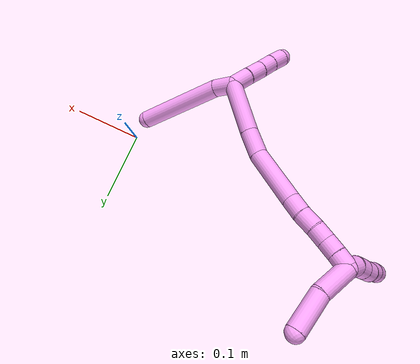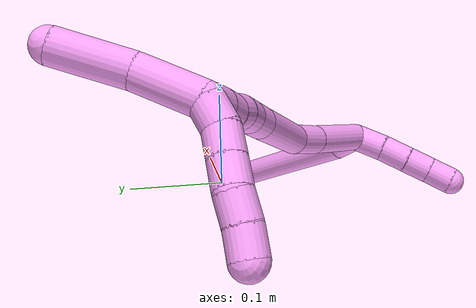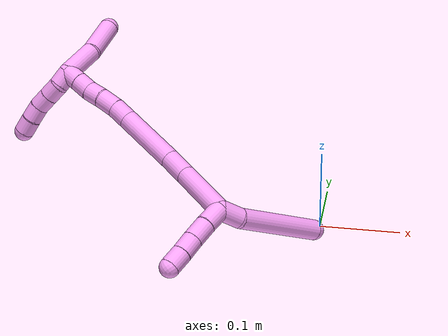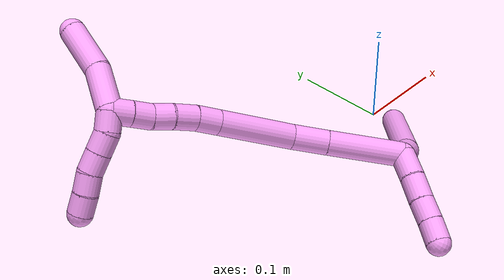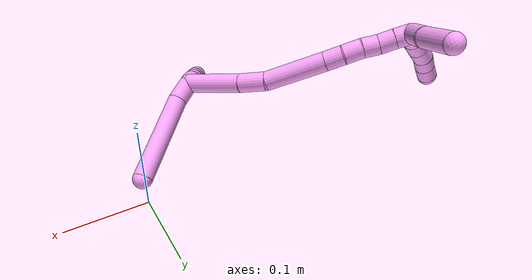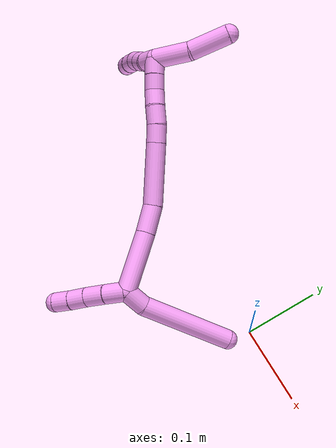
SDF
<sdf version="1.7">
 <world name="default">
  <model name="4">
   <static>0</static>
   <link name="4">
    <collision name="collision-cylinder-e_1_2_8">
     <pose>0.001744 0.011386 -0.008772 -2.22721 0.120759 -0.244541</pose>
     <geometry><cylinder><radius>0.0125</radius><length>0.028957</length></cylinder></geometry>
     <surface>
      <friction><ode><mu>1.16</mu><mu2>1.16</mu2><slip1>0</slip1><slip2>0</slip2></ode></friction>
      <contact><ode><kp>1e+06</kp><kd>1</kd><max_vel>0</max_vel><min_depth>0.001</min_depth></ode></contact>
     </surface>
    </collision>
    <visual name="visual-cylinder-e_1_2_8">
     <pose>0.001744 0.011386 -0.008772 -2.22721 0.120759 -0.244541</pose>
     <geometry><cylinder><radius>0.0125</radius><length>0.028957</length></cylinder></geometry>
     <material><ambient>1 0.65098 0.996078 1</ambient></material>
    </visual>
    <collision name="collision-cylinder-e_2_8_6">
     <pose>0.010856 0.079269 -0.037957 -1.91753 0.12204 -0.173638</pose>
     <geometry><cylinder><radius>0.0125</radius><length>0.121043</length></cylinder></geometry>
     <surface>
      <friction><ode><mu>1.16</mu><mu2>1.16</mu2><slip1>0</slip1><slip2>0</slip2></ode></friction>
      <contact><ode><kp>1e+06</kp><kd>1</kd><max_vel>0</max_vel><min_depth>0.001</min_depth></ode></contact>
     </surface>
    </collision>
    <visual name="visual-cylinder-e_2_8_6">
     <pose>0.010856 0.079269 -0.037957 -1.91753 0.12204 -0.173638</pose>
     <geometry><cylinder><radius>0.0125</radius><length>0.121043</length></cylinder></geometry>
     <material><ambient>1 0.65098 0.996078 1</ambient></material>
    </visual>
    <collision name="collision-cylinder-e_1_2_9">
     <pose>-0.007057 -0.011419 -0.004637 1.95653 -0.52007 -0.752722</pose>
     <geometry><cylinder><radius>0.0125</radius><length>0.028404</length></cylinder></geometry>
     <surface>
      <friction><ode><mu>1.16</mu><mu2>1.16</mu2><slip1>0</slip1><slip2>0</slip2></ode></friction>
      <contact><ode><kp>1e+06</kp><kd>1</kd><max_vel>0</max_vel><min_depth>0.001</min_depth></ode></contact>
     </surface>
    </collision>
    <visual name="visual-cylinder-e_1_2_9">
     <pose>-0.007057 -0.011419 -0.004637 1.95653 -0.52007 -0.752722</pose>
     <geometry><cylinder><radius>0.0125</radius><length>0.028404</length></cylinder></geometry>
     <material><ambient>1 0.65098 0.996078 1</ambient></material>
    </visual>
    <collision name="collision-cylinder-e_2_9_10">
     <pose>-0.021126 -0.032687 -0.013855 2.00616 -0.573139 -0.865681</pose>
     <geometry><cylinder><radius>0.0125</radius><length>0.025859</length></cylinder></geometry>
     <surface>
      <friction><ode><mu>1.16</mu><mu2>1.16</mu2><slip1>0</slip1><slip2>0</slip2></ode></friction>
      <contact><ode><kp>1e+06</kp><kd>1</kd><max_vel>0</max_vel><min_depth>0.001</min_depth></ode></contact>
     </surface>
    </collision>
    <visual name="visual-cylinder-e_2_9_10">
     <pose>-0.021126 -0.032687 -0.013855 2.00616 -0.573139 -0.865681</pose>
     <geometry><cylinder><radius>0.0125</radius><length>0.025859</length></cylinder></geometry>
     <material><ambient>1 0.65098 0.996078 1</ambient></material>
    </visual>
    <collision name="collision-cylinder-e_3_10_11">
     <pose>-0.034079 -0.051205 -0.022874 2.04394 -0.547875 -0.861512</pose>
     <geometry><cylinder><radius>0.0125</radius><length>0.022813</length></cylinder></geometry>
     <surface>
      <friction><ode><mu>1.16</mu><mu2>1.16</mu2><slip1>0</slip1><slip2>0</slip2></ode></friction>
      <contact><ode><kp>1e+06</kp><kd>1</kd><max_vel>0</max_vel><min_depth>0.001</min_depth></ode></contact>
     </surface>
    </collision>
    <visual name="visual-cylinder-e_3_10_11">
     <pose>-0.034079 -0.051205 -0.022874 2.04394 -0.547875 -0.861512</pose>
     <geometry><cylinder><radius>0.0125</radius><length>0.022813</length></cylinder></geometry>
     <material><ambient>1 0.65098 0.996078 1</ambient></material>
    </visual>
    <collision name="collision-cylinder-e_4_11_5">
     <pose>-0.04637 -0.068546 -0.031287 2.00062 -0.587141 -0.88058</pose>
     <geometry><cylinder><radius>0.0125</radius><length>0.022925</length></cylinder></geometry>
     <surface>
      <friction><ode><mu>1.16</mu><mu2>1.16</mu2><slip1>0</slip1><slip2>0</slip2></ode></friction>
      <contact><ode><kp>1e+06</kp><kd>1</kd><max_vel>0</max_vel><min_depth>0.001</min_depth></ode></contact>
     </surface>
    </collision>
    <visual name="visual-cylinder-e_4_11_5">
     <pose>-0.04637 -0.068546 -0.031287 2.00062 -0.587141 -0.88058</pose>
     <geometry><cylinder><radius>0.0125</radius><length>0.022925</length></cylinder></geometry>
     <material><ambient>1 0.65098 0.996078 1</ambient></material>
    </visual>
    <collision name="collision-cylinder-e_1_2_12">
     <pose>-0.013186 0.012039 0.033801 -0.34217 -0.352162 0.061462</pose>
     <geometry><cylinder><radius>0.0125</radius><length>0.076455</length></cylinder></geometry>
     <surface>
      <friction><ode><mu>1.16</mu><mu2>1.16</mu2><slip1>0</slip1><slip2>0</slip2></ode></friction>
      <contact><ode><kp>1e+06</kp><kd>1</kd><max_vel>0</max_vel><min_depth>0.001</min_depth></ode></contact>
     </surface>
    </collision>
    <visual name="visual-cylinder-e_1_2_12">
     <pose>-0.013186 0.012039 0.033801 -0.34217 -0.352162 0.061462</pose>
     <geometry><cylinder><radius>0.0125</radius><length>0.076455</length></cylinder></geometry>
     <material><ambient>1 0.65098 0.996078 1</ambient></material>
    </visual>
    <collision name="collision-cylinder-e_2_12_13">
     <pose>-0.032308 0.028672 0.084139 -0.270935 -0.333036 0.04581</pose>
     <geometry><cylinder><radius>0.0125</radius><length>0.036321</length></cylinder></geometry>
     <surface>
      <friction><ode><mu>1.16</mu><mu2>1.16</mu2><slip1>0</slip1><slip2>0</slip2></ode></friction>
      <contact><ode><kp>1e+06</kp><kd>1</kd><max_vel>0</max_vel><min_depth>0.001</min_depth></ode></contact>
     </surface>
    </collision>
    <visual name="visual-cylinder-e_2_12_13">
     <pose>-0.032308 0.028672 0.084139 -0.270935 -0.333036 0.04581</pose>
     <geometry><cylinder><radius>0.0125</radius><length>0.036321</length></cylinder></geometry>
     <material><ambient>1 0.65098 0.996078 1</ambient></material>
    </visual>
    <collision name="collision-cylinder-e_3_13_14">
     <pose>-0.048197 0.033895 0.139034 -0.016406 -0.253817 0.002093</pose>
     <geometry><cylinder><radius>0.0125</radius><length>0.079267</length></cylinder></geometry>
     <surface>
      <friction><ode><mu>1.16</mu><mu2>1.16</mu2><slip1>0</slip1><slip2>0</slip2></ode></friction>
      <contact><ode><kp>1e+06</kp><kd>1</kd><max_vel>0</max_vel><min_depth>0.001</min_depth></ode></contact>
     </surface>
    </collision>
    <visual name="visual-cylinder-e_3_13_14">
     <pose>-0.048197 0.033895 0.139034 -0.016406 -0.253817 0.002093</pose>
     <geometry><cylinder><radius>0.0125</radius><length>0.079267</length></cylinder></geometry>
     <material><ambient>1 0.65098 0.996078 1</ambient></material>
    </visual>
    <collision name="collision-cylinder-e_4_14_15">
     <pose>-0.06105 0.034521 0.188641 0.000296 -0.252342 -3.8e-05</pose>
     <geometry><cylinder><radius>0.0125</radius><length>0.023232</length></cylinder></geometry>
     <surface>
      <friction><ode><mu>1.16</mu><mu2>1.16</mu2><slip1>0</slip1><slip2>0</slip2></ode></friction>
      <contact><ode><kp>1e+06</kp><kd>1</kd><max_vel>0</max_vel><min_depth>0.001</min_depth></ode></contact>
     </surface>
    </collision>
    <visual name="visual-cylinder-e_4_14_15">
     <pose>-0.06105 0.034521 0.188641 0.000296 -0.252342 -3.8e-05</pose>
     <geometry><cylinder><radius>0.0125</radius><length>0.023232</length></cylinder></geometry>
     <material><ambient>1 0.65098 0.996078 1</ambient></material>
    </visual>
    <collision name="collision-cylinder-e_5_15_16">
     <pose>-0.068001 0.033278 0.211054 0.110532 -0.346164 -0.019344</pose>
     <geometry><cylinder><radius>0.0125</radius><length>0.023883</length></cylinder></geometry>
     <surface>
      <friction><ode><mu>1.16</mu><mu2>1.16</mu2><slip1>0</slip1><slip2>0</slip2></ode></friction>
      <contact><ode><kp>1e+06</kp><kd>1</kd><max_vel>0</max_vel><min_depth>0.001</min_depth></ode></contact>
     </surface>
    </collision>
    <visual name="visual-cylinder-e_5_15_16">
     <pose>-0.068001 0.033278 0.211054 0.110532 -0.346164 -0.019344</pose>
     <geometry><cylinder><radius>0.0125</radius><length>0.023883</length></cylinder></geometry>
     <material><ambient>1 0.65098 0.996078 1</ambient></material>
    </visual>
    <collision name="collision-cylinder-e_6_16_17">
     <pose>-0.076413 0.031791 0.231341 0.027193 -0.445697 -0.006163</pose>
     <geometry><cylinder><radius>0.0125</radius><length>0.020229</length></cylinder></geometry>
     <surface>
      <friction><ode><mu>1.16</mu><mu2>1.16</mu2><slip1>0</slip1><slip2>0</slip2></ode></friction>
      <contact><ode><kp>1e+06</kp><kd>1</kd><max_vel>0</max_vel><min_depth>0.001</min_depth></ode></contact>
     </surface>
    </collision>
    <visual name="visual-cylinder-e_6_16_17">
     <pose>-0.076413 0.031791 0.231341 0.027193 -0.445697 -0.006163</pose>
     <geometry><cylinder><radius>0.0125</radius><length>0.020229</length></cylinder></geometry>
     <material><ambient>1 0.65098 0.996078 1</ambient></material>
    </visual>
    <collision name="collision-cylinder-e_7_17_18">
     <pose>-0.083547 0.031182 0.250189 0.037053 -0.27764 -0.005178</pose>
     <geometry><cylinder><radius>0.0125</radius><length>0.020238</length></cylinder></geometry>
     <surface>
      <friction><ode><mu>1.16</mu><mu2>1.16</mu2><slip1>0</slip1><slip2>0</slip2></ode></friction>
      <contact><ode><kp>1e+06</kp><kd>1</kd><max_vel>0</max_vel><min_depth>0.001</min_depth></ode></contact>
     </surface>
    </collision>
    <visual name="visual-cylinder-e_7_17_18">
     <pose>-0.083547 0.031182 0.250189 0.037053 -0.27764 -0.005178</pose>
     <geometry><cylinder><radius>0.0125</radius><length>0.020238</length></cylinder></geometry>
     <material><ambient>1 0.65098 0.996078 1</ambient></material>
    </visual>
    <collision name="collision-cylinder-e_8_18_1">
     <pose>-0.089432 0.030833 0.269615 -0.001096 -0.31038 0.000171</pose>
     <geometry><cylinder><radius>0.0125</radius><length>0.020375</length></cylinder></geometry>
     <surface>
      <friction><ode><mu>1.16</mu><mu2>1.16</mu2><slip1>0</slip1><slip2>0</slip2></ode></friction>
      <contact><ode><kp>1e+06</kp><kd>1</kd><max_vel>0</max_vel><min_depth>0.001</min_depth></ode></contact>
     </surface>
    </collision>
    <visual name="visual-cylinder-e_8_18_1">
     <pose>-0.089432 0.030833 0.269615 -0.001096 -0.31038 0.000171</pose>
     <geometry><cylinder><radius>0.0125</radius><length>0.020375</length></cylinder></geometry>
     <material><ambient>1 0.65098 0.996078 1</ambient></material>
    </visual>
    <collision name="collision-cylinder-e_1_1_19">
     <pose>-0.101527 0.027581 0.276374 2.30456 -1.11599 -1.90329</pose>
     <geometry><cylinder><radius>0.0125</radius><length>0.02</length></cylinder></geometry>
     <surface>
      <friction><ode><mu>1.16</mu><mu2>1.16</mu2><slip1>0</slip1><slip2>0</slip2></ode></friction>
      <contact><ode><kp>1e+06</kp><kd>1</kd><max_vel>0</max_vel><min_depth>0.001</min_depth></ode></contact>
     </surface>
    </collision>
    <visual name="visual-cylinder-e_1_1_19">
     <pose>-0.101527 0.027581 0.276374 2.30456 -1.11599 -1.90329</pose>
     <geometry><cylinder><radius>0.0125</radius><length>0.02</length></cylinder></geometry>
     <material><ambient>1 0.65098 0.996078 1</ambient></material>
    </visual>
    <collision name="collision-cylinder-e_2_19_20">
     <pose>-0.120446 0.023418 0.272743 2.22438 -1.45718 -2.13092</pose>
     <geometry><cylinder><radius>0.0125</radius><length>0.02</length></cylinder></geometry>
     <surface>
      <friction><ode><mu>1.16</mu><mu2>1.16</mu2><slip1>0</slip1><slip2>0</slip2></ode></friction>
      <contact><ode><kp>1e+06</kp><kd>1</kd><max_vel>0</max_vel><min_depth>0.001</min_depth></ode></contact>
     </surface>
    </collision>
    <visual name="visual-cylinder-e_2_19_20">
     <pose>-0.120446 0.023418 0.272743 2.22438 -1.45718 -2.13092</pose>
     <geometry><cylinder><radius>0.0125</radius><length>0.02</length></cylinder></geometry>
     <material><ambient>1 0.65098 0.996078 1</ambient></material>
    </visual>
    <collision name="collision-cylinder-e_3_20_21">
     <pose>-0.14032 0.021676 0.27134 2.27398 -1.46022 -2.18647</pose>
     <geometry><cylinder><radius>0.0125</radius><length>0.02</length></cylinder></geometry>
     <surface>
      <friction><ode><mu>1.16</mu><mu2>1.16</mu2><slip1>0</slip1><slip2>0</slip2></ode></friction>
      <contact><ode><kp>1e+06</kp><kd>1</kd><max_vel>0</max_vel><min_depth>0.001</min_depth></ode></contact>
     </surface>
    </collision>
    <visual name="visual-cylinder-e_3_20_21">
     <pose>-0.14032 0.021676 0.27134 2.27398 -1.46022 -2.18647</pose>
     <geometry><cylinder><radius>0.0125</radius><length>0.02</length></cylinder></geometry>
     <material><ambient>1 0.65098 0.996078 1</ambient></material>
    </visual>
    <collision name="collision-cylinder-e_4_21_22">
     <pose>-0.159802 0.019775 0.267833 2.77885 -1.26739 -2.65244</pose>
     <geometry><cylinder><radius>0.0125</radius><length>0.02</length></cylinder></geometry>
     <surface>
      <friction><ode><mu>1.16</mu><mu2>1.16</mu2><slip1>0</slip1><slip2>0</slip2></ode></friction>
      <contact><ode><kp>1e+06</kp><kd>1</kd><max_vel>0</max_vel><min_depth>0.001</min_depth></ode></contact>
     </surface>
    </collision>
    <visual name="visual-cylinder-e_4_21_22">
     <pose>-0.159802 0.019775 0.267833 2.77885 -1.26739 -2.65244</pose>
     <geometry><cylinder><radius>0.0125</radius><length>0.02</length></cylinder></geometry>
     <material><ambient>1 0.65098 0.996078 1</ambient></material>
    </visual>
    <collision name="collision-cylinder-e_5_22_4">
     <pose>-0.17904 0.018689 0.262585 3.13138 -1.32282 -3.12847</pose>
     <geometry><cylinder><radius>0.0125</radius><length>0.02</length></cylinder></geometry>
     <surface>
      <friction><ode><mu>1.16</mu><mu2>1.16</mu2><slip1>0</slip1><slip2>0</slip2></ode></friction>
      <contact><ode><kp>1e+06</kp><kd>1</kd><max_vel>0</max_vel><min_depth>0.001</min_depth></ode></contact>
     </surface>
    </collision>
    <visual name="visual-cylinder-e_5_22_4">
     <pose>-0.17904 0.018689 0.262585 3.13138 -1.32282 -3.12847</pose>
     <geometry><cylinder><radius>0.0125</radius><length>0.02</length></cylinder></geometry>
     <material><ambient>1 0.65098 0.996078 1</ambient></material>
    </visual>
    <collision name="collision-cylinder-e_1_1_23">
     <pose>-0.080772 0.050022 0.287122 -1.18422 0.516912 -0.35196</pose>
     <geometry><cylinder><radius>0.0125</radius><length>0.047638</length></cylinder></geometry>
     <surface>
      <friction><ode><mu>1.16</mu><mu2>1.16</mu2><slip1>0</slip1><slip2>0</slip2></ode></friction>
      <contact><ode><kp>1e+06</kp><kd>1</kd><max_vel>0</max_vel><min_depth>0.001</min_depth></ode></contact>
     </surface>
    </collision>
    <visual name="visual-cylinder-e_1_1_23">
     <pose>-0.080772 0.050022 0.287122 -1.18422 0.516912 -0.35196</pose>
     <geometry><cylinder><radius>0.0125</radius><length>0.047638</length></cylinder></geometry>
     <material><ambient>1 0.65098 0.996078 1</ambient></material>
    </visual>
    <collision name="collision-cylinder-e_2_23_3">
     <pose>-0.060736 0.090266 0.308097 -1.01212 0.321177 -0.179062</pose>
     <geometry><cylinder><radius>0.0125</radius><length>0.052362</length></cylinder></geometry>
     <surface>
      <friction><ode><mu>1.16</mu><mu2>1.16</mu2><slip1>0</slip1><slip2>0</slip2></ode></friction>
      <contact><ode><kp>1e+06</kp><kd>1</kd><max_vel>0</max_vel><min_depth>0.001</min_depth></ode></contact>
     </surface>
    </collision>
    <visual name="visual-cylinder-e_2_23_3">
     <pose>-0.060736 0.090266 0.308097 -1.01212 0.321177 -0.179062</pose>
     <geometry><cylinder><radius>0.0125</radius><length>0.052362</length></cylinder></geometry>
     <material><ambient>1 0.65098 0.996078 1</ambient></material>
    </visual>
    <collision name="collision-sphere-3">
     <pose>-0.052471 0.111332 0.321265 0 -0 0</pose>
     <geometry><sphere><radius>0.0125</radius></sphere></geometry>
     <surface>
      <friction><ode><mu>1.16</mu><mu2>1.16</mu2><slip1>0</slip1><slip2>0</slip2></ode></friction>
      <contact><ode><kp>1e+06</kp><kd>1</kd><max_vel>0</max_vel><min_depth>0.001</min_depth></ode></contact>
     </surface>
    </collision>
    <visual name="visual-sphere-3">
     <pose>-0.052471 0.111332 0.321265 0 -0 0</pose>
     <geometry><sphere><radius>0.0125</radius></sphere></geometry>
     <material><ambient>1 0.65098 0.996078 1</ambient></material>
    </visual>
    <collision name="collision-sphere-23">
     <pose>-0.069001 0.069201 0.294929 0 -0 0</pose>
     <geometry><sphere><radius>0.0125</radius></sphere></geometry>
     <surface>
      <friction><ode><mu>1.16</mu><mu2>1.16</mu2><slip1>0</slip1><slip2>0</slip2></ode></friction>
      <contact><ode><kp>1e+06</kp><kd>1</kd><max_vel>0</max_vel><min_depth>0.001</min_depth></ode></contact>
     </surface>
    </collision>
    <visual name="visual-sphere-23">
     <pose>-0.069001 0.069201 0.294929 0 -0 0</pose>
     <geometry><sphere><radius>0.0125</radius></sphere></geometry>
     <material><ambient>1 0.65098 0.996078 1</ambient></material>
    </visual>
    <collision name="collision-sphere-4">
     <pose>-0.188734 0.018664 0.260131 0 -0 0</pose>
     <geometry><sphere><radius>0.0125</radius></sphere></geometry>
     <surface>
      <friction><ode><mu>1.16</mu><mu2>1.16</mu2><slip1>0</slip1><slip2>0</slip2></ode></friction>
      <contact><ode><kp>1e+06</kp><kd>1</kd><max_vel>0</max_vel><min_depth>0.001</min_depth></ode></contact>
     </surface>
    </collision>
    <visual name="visual-sphere-4">
     <pose>-0.188734 0.018664 0.260131 0 -0 0</pose>
     <geometry><sphere><radius>0.0125</radius></sphere></geometry>
     <material><ambient>1 0.65098 0.996078 1</ambient></material>
    </visual>
    <collision name="collision-sphere-22">
     <pose>-0.169346 0.018714 0.265039 0 -0 0</pose>
     <geometry><sphere><radius>0.0125</radius></sphere></geometry>
     <surface>
      <friction><ode><mu>1.16</mu><mu2>1.16</mu2><slip1>0</slip1><slip2>0</slip2></ode></friction>
      <contact><ode><kp>1e+06</kp><kd>1</kd><max_vel>0</max_vel><min_depth>0.001</min_depth></ode></contact>
     </surface>
    </collision>
    <visual name="visual-sphere-22">
     <pose>-0.169346 0.018714 0.265039 0 -0 0</pose>
     <geometry><sphere><radius>0.0125</radius></sphere></geometry>
     <material><ambient>1 0.65098 0.996078 1</ambient></material>
    </visual>
    <collision name="collision-sphere-21">
     <pose>-0.150259 0.020835 0.270626 0 -0 0</pose>
     <geometry><sphere><radius>0.0125</radius></sphere></geometry>
     <surface>
      <friction><ode><mu>1.16</mu><mu2>1.16</mu2><slip1>0</slip1><slip2>0</slip2></ode></friction>
      <contact><ode><kp>1e+06</kp><kd>1</kd><max_vel>0</max_vel><min_depth>0.001</min_depth></ode></contact>
     </surface>
    </collision>
    <visual name="visual-sphere-21">
     <pose>-0.150259 0.020835 0.270626 0 -0 0</pose>
     <geometry><sphere><radius>0.0125</radius></sphere></geometry>
     <material><ambient>1 0.65098 0.996078 1</ambient></material>
    </visual>
    <collision name="collision-sphere-20">
     <pose>-0.130381 0.022518 0.272053 0 -0 0</pose>
     <geometry><sphere><radius>0.0125</radius></sphere></geometry>
     <surface>
      <friction><ode><mu>1.16</mu><mu2>1.16</mu2><slip1>0</slip1><slip2>0</slip2></ode></friction>
      <contact><ode><kp>1e+06</kp><kd>1</kd><max_vel>0</max_vel><min_depth>0.001</min_depth></ode></contact>
     </surface>
    </collision>
    <visual name="visual-sphere-20">
     <pose>-0.130381 0.022518 0.272053 0 -0 0</pose>
     <geometry><sphere><radius>0.0125</radius></sphere></geometry>
     <material><ambient>1 0.65098 0.996078 1</ambient></material>
    </visual>
    <collision name="collision-sphere-11">
     <pose>-0.04002 -0.059872 -0.027311 0 -0 0</pose>
     <geometry><sphere><radius>0.0125</radius></sphere></geometry>
     <surface>
      <friction><ode><mu>1.16</mu><mu2>1.16</mu2><slip1>0</slip1><slip2>0</slip2></ode></friction>
      <contact><ode><kp>1e+06</kp><kd>1</kd><max_vel>0</max_vel><min_depth>0.001</min_depth></ode></contact>
     </surface>
    </collision>
    <visual name="visual-sphere-11">
     <pose>-0.04002 -0.059872 -0.027311 0 -0 0</pose>
     <geometry><sphere><radius>0.0125</radius></sphere></geometry>
     <material><ambient>1 0.65098 0.996078 1</ambient></material>
    </visual>
    <collision name="collision-sphere-10">
     <pose>-0.028138 -0.042537 -0.018437 0 -0 0</pose>
     <geometry><sphere><radius>0.0125</radius></sphere></geometry>
     <surface>
      <friction><ode><mu>1.16</mu><mu2>1.16</mu2><slip1>0</slip1><slip2>0</slip2></ode></friction>
      <contact><ode><kp>1e+06</kp><kd>1</kd><max_vel>0</max_vel><min_depth>0.001</min_depth></ode></contact>
     </surface>
    </collision>
    <visual name="visual-sphere-10">
     <pose>-0.028138 -0.042537 -0.018437 0 -0 0</pose>
     <geometry><sphere><radius>0.0125</radius></sphere></geometry>
     <material><ambient>1 0.65098 0.996078 1</ambient></material>
    </visual>
    <collision name="collision-sphere-6">
     <pose>0.018224 0.135765 -0.058371 0 -0 0</pose>
     <geometry><sphere><radius>0.0125</radius></sphere></geometry>
     <surface>
      <friction><ode><mu>1.16</mu><mu2>1.16</mu2><slip1>0</slip1><slip2>0</slip2></ode></friction>
      <contact><ode><kp>1e+06</kp><kd>1</kd><max_vel>0</max_vel><min_depth>0.001</min_depth></ode></contact>
     </surface>
    </collision>
    <visual name="visual-sphere-6">
     <pose>0.018224 0.135765 -0.058371 0 -0 0</pose>
     <geometry><sphere><radius>0.0125</radius></sphere></geometry>
     <material><ambient>1 0.65098 0.996078 1</ambient></material>
    </visual>
    <collision name="collision-sphere-9">
     <pose>-0.014115 -0.022837 -0.009274 0 -0 0</pose>
     <geometry><sphere><radius>0.0125</radius></sphere></geometry>
     <surface>
      <friction><ode><mu>1.16</mu><mu2>1.16</mu2><slip1>0</slip1><slip2>0</slip2></ode></friction>
      <contact><ode><kp>1e+06</kp><kd>1</kd><max_vel>0</max_vel><min_depth>0.001</min_depth></ode></contact>
     </surface>
    </collision>
    <visual name="visual-sphere-9">
     <pose>-0.014115 -0.022837 -0.009274 0 -0 0</pose>
     <geometry><sphere><radius>0.0125</radius></sphere></geometry>
     <material><ambient>1 0.65098 0.996078 1</ambient></material>
    </visual>
    <collision name="collision-sphere-2">
     <geometry><sphere><radius>0.0125</radius></sphere></geometry>
     <surface>
      <friction><ode><mu>1.16</mu><mu2>1.16</mu2><slip1>0</slip1><slip2>0</slip2></ode></friction>
      <contact><ode><kp>1e+06</kp><kd>1</kd><max_vel>0</max_vel><min_depth>0.001</min_depth></ode></contact>
     </surface>
    </collision>
    <visual name="visual-sphere-2">
     <geometry><sphere><radius>0.0125</radius></sphere></geometry>
     <material><ambient>1 0.65098 0.996078 1</ambient></material>
    </visual>
    <collision name="collision-sphere-19">
     <pose>-0.11051 0.024318 0.273432 0 -0 0</pose>
     <geometry><sphere><radius>0.0125</radius></sphere></geometry>
     <surface>
      <friction><ode><mu>1.16</mu><mu2>1.16</mu2><slip1>0</slip1><slip2>0</slip2></ode></friction>
      <contact><ode><kp>1e+06</kp><kd>1</kd><max_vel>0</max_vel><min_depth>0.001</min_depth></ode></contact>
     </surface>
    </collision>
    <visual name="visual-sphere-19">
     <pose>-0.11051 0.024318 0.273432 0 -0 0</pose>
     <geometry><sphere><radius>0.0125</radius></sphere></geometry>
     <material><ambient>1 0.65098 0.996078 1</ambient></material>
    </visual>
    <collision name="collision-sphere-8">
     <pose>0.003488 0.022772 -0.017543 0 -0 0</pose>
     <geometry><sphere><radius>0.0125</radius></sphere></geometry>
     <surface>
      <friction><ode><mu>1.16</mu><mu2>1.16</mu2><slip1>0</slip1><slip2>0</slip2></ode></friction>
      <contact><ode><kp>1e+06</kp><kd>1</kd><max_vel>0</max_vel><min_depth>0.001</min_depth></ode></contact>
     </surface>
    </collision>
    <visual name="visual-sphere-8">
     <pose>0.003488 0.022772 -0.017543 0 -0 0</pose>
     <geometry><sphere><radius>0.0125</radius></sphere></geometry>
     <material><ambient>1 0.65098 0.996078 1</ambient></material>
    </visual>
    <collision name="collision-sphere-5">
     <pose>-0.05272 -0.077221 -0.035264 0 -0 0</pose>
     <geometry><sphere><radius>0.0125</radius></sphere></geometry>
     <surface>
      <friction><ode><mu>1.16</mu><mu2>1.16</mu2><slip1>0</slip1><slip2>0</slip2></ode></friction>
      <contact><ode><kp>1e+06</kp><kd>1</kd><max_vel>0</max_vel><min_depth>0.001</min_depth></ode></contact>
     </surface>
    </collision>
    <visual name="visual-sphere-5">
     <pose>-0.05272 -0.077221 -0.035264 0 -0 0</pose>
     <geometry><sphere><radius>0.0125</radius></sphere></geometry>
     <material><ambient>1 0.65098 0.996078 1</ambient></material>
    </visual>
    <collision name="collision-sphere-12">
     <pose>-0.026372 0.024079 0.067603 0 -0 0</pose>
     <geometry><sphere><radius>0.0125</radius></sphere></geometry>
     <surface>
      <friction><ode><mu>1.16</mu><mu2>1.16</mu2><slip1>0</slip1><slip2>0</slip2></ode></friction>
      <contact><ode><kp>1e+06</kp><kd>1</kd><max_vel>0</max_vel><min_depth>0.001</min_depth></ode></contact>
     </surface>
    </collision>
    <visual name="visual-sphere-12">
     <pose>-0.026372 0.024079 0.067603 0 -0 0</pose>
     <geometry><sphere><radius>0.0125</radius></sphere></geometry>
     <material><ambient>1 0.65098 0.996078 1</ambient></material>
    </visual>
    <collision name="collision-sphere-13">
     <pose>-0.038245 0.033265 0.100676 0 -0 0</pose>
     <geometry><sphere><radius>0.0125</radius></sphere></geometry>
     <surface>
      <friction><ode><mu>1.16</mu><mu2>1.16</mu2><slip1>0</slip1><slip2>0</slip2></ode></friction>
      <contact><ode><kp>1e+06</kp><kd>1</kd><max_vel>0</max_vel><min_depth>0.001</min_depth></ode></contact>
     </surface>
    </collision>
    <visual name="visual-sphere-13">
     <pose>-0.038245 0.033265 0.100676 0 -0 0</pose>
     <geometry><sphere><radius>0.0125</radius></sphere></geometry>
     <material><ambient>1 0.65098 0.996078 1</ambient></material>
    </visual>
    <collision name="collision-sphere-14">
     <pose>-0.058149 0.034524 0.177393 0 -0 0</pose>
     <geometry><sphere><radius>0.0125</radius></sphere></geometry>
     <surface>
      <friction><ode><mu>1.16</mu><mu2>1.16</mu2><slip1>0</slip1><slip2>0</slip2></ode></friction>
      <contact><ode><kp>1e+06</kp><kd>1</kd><max_vel>0</max_vel><min_depth>0.001</min_depth></ode></contact>
     </surface>
    </collision>
    <visual name="visual-sphere-14">
     <pose>-0.058149 0.034524 0.177393 0 -0 0</pose>
     <geometry><sphere><radius>0.0125</radius></sphere></geometry>
     <material><ambient>1 0.65098 0.996078 1</ambient></material>
    </visual>
    <collision name="collision-sphere-15">
     <pose>-0.06395 0.034517 0.199889 0 -0 0</pose>
     <geometry><sphere><radius>0.0125</radius></sphere></geometry>
     <surface>
      <friction><ode><mu>1.16</mu><mu2>1.16</mu2><slip1>0</slip1><slip2>0</slip2></ode></friction>
      <contact><ode><kp>1e+06</kp><kd>1</kd><max_vel>0</max_vel><min_depth>0.001</min_depth></ode></contact>
     </surface>
    </collision>
    <visual name="visual-sphere-15">
     <pose>-0.06395 0.034517 0.199889 0 -0 0</pose>
     <geometry><sphere><radius>0.0125</radius></sphere></geometry>
     <material><ambient>1 0.65098 0.996078 1</ambient></material>
    </visual>
    <collision name="collision-sphere-16">
     <pose>-0.072053 0.032039 0.222218 0 -0 0</pose>
     <geometry><sphere><radius>0.0125</radius></sphere></geometry>
     <surface>
      <friction><ode><mu>1.16</mu><mu2>1.16</mu2><slip1>0</slip1><slip2>0</slip2></ode></friction>
      <contact><ode><kp>1e+06</kp><kd>1</kd><max_vel>0</max_vel><min_depth>0.001</min_depth></ode></contact>
     </surface>
    </collision>
    <visual name="visual-sphere-16">
     <pose>-0.072053 0.032039 0.222218 0 -0 0</pose>
     <geometry><sphere><radius>0.0125</radius></sphere></geometry>
     <material><ambient>1 0.65098 0.996078 1</ambient></material>
    </visual>
    <collision name="collision-sphere-17">
     <pose>-0.080774 0.031543 0.240464 0 -0 0</pose>
     <geometry><sphere><radius>0.0125</radius></sphere></geometry>
     <surface>
      <friction><ode><mu>1.16</mu><mu2>1.16</mu2><slip1>0</slip1><slip2>0</slip2></ode></friction>
      <contact><ode><kp>1e+06</kp><kd>1</kd><max_vel>0</max_vel><min_depth>0.001</min_depth></ode></contact>
     </surface>
    </collision>
    <visual name="visual-sphere-17">
     <pose>-0.080774 0.031543 0.240464 0 -0 0</pose>
     <geometry><sphere><radius>0.0125</radius></sphere></geometry>
     <material><ambient>1 0.65098 0.996078 1</ambient></material>
    </visual>
    <collision name="collision-sphere-18">
     <pose>-0.08632 0.030822 0.259914 0 -0 0</pose>
     <geometry><sphere><radius>0.0125</radius></sphere></geometry>
     <surface>
      <friction><ode><mu>1.16</mu><mu2>1.16</mu2><slip1>0</slip1><slip2>0</slip2></ode></friction>
      <contact><ode><kp>1e+06</kp><kd>1</kd><max_vel>0</max_vel><min_depth>0.001</min_depth></ode></contact>
     </surface>
    </collision>
    <visual name="visual-sphere-18">
     <pose>-0.08632 0.030822 0.259914 0 -0 0</pose>
     <geometry><sphere><radius>0.0125</radius></sphere></geometry>
     <material><ambient>1 0.65098 0.996078 1</ambient></material>
    </visual>
    <collision name="collision-sphere-1">
     <pose>-0.092543 0.030843 0.279315 0 -0 0</pose>
     <geometry><sphere><radius>0.0125</radius></sphere></geometry>
     <surface>
      <friction><ode><mu>1.16</mu><mu2>1.16</mu2><slip1>0</slip1><slip2>0</slip2></ode></friction>
      <contact><ode><kp>1e+06</kp><kd>1</kd><max_vel>0</max_vel><min_depth>0.001</min_depth></ode></contact>
     </surface>
    </collision>
    <visual name="visual-sphere-1">
     <pose>-0.092543 0.030843 0.279315 0 -0 0</pose>
     <geometry><sphere><radius>0.0125</radius></sphere></geometry>
     <material><ambient>1 0.65098 0.996078 1</ambient></material>
    </visual>
    <inertial>
     <pose>-0.048502 0.031327 0.122095 0 -0 0</pose>
     <mass>0.75</mass>
     <inertia>
      <ixx>0.000221</ixx>
      <ixy>0</ixy>
      <ixz>0</ixz>
      <iyy>4.3e-05</iyy>
      <iyz>0</iyz>
      <izz>-0.000142</izz>
     </inertia>
    </inertial>
   </link>
   <pose>-0.107725 -0.118572 0.074267 -0.467243 -0.832158 -0.081022</pose>
  </model>
 </world>
</sdf>
